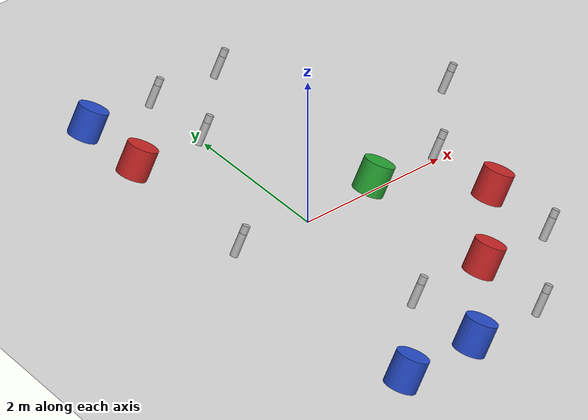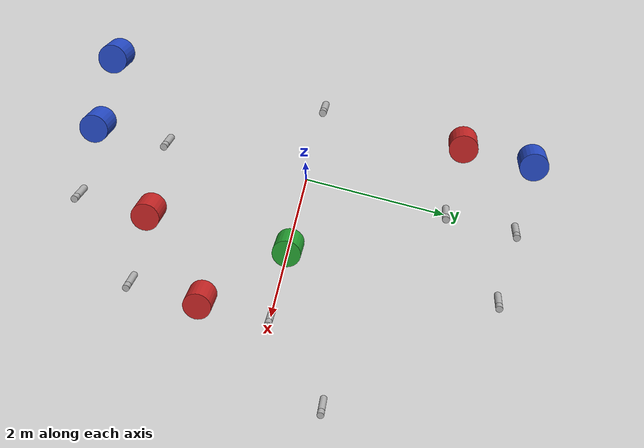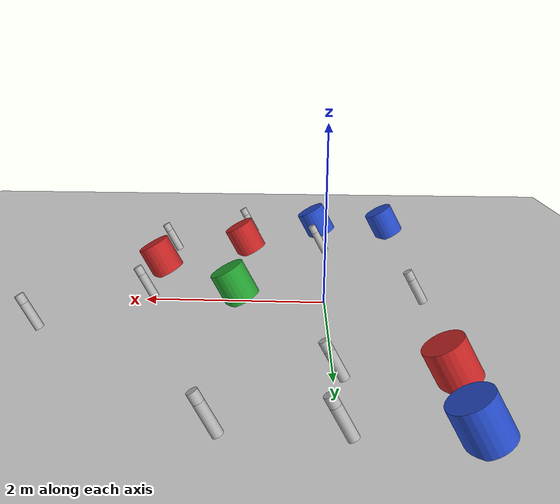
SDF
<sdf version='1.6'>
  <world name='default'>
    <plugin name="BetterReset" filename="libBetterReset.so"></plugin>

    <light name='sun' type='directional'>
      <cast_shadows>1</cast_shadows>
      <pose frame=''>0 0 10 0 -0 0</pose>
      <diffuse>0.8 0.8 0.8 1</diffuse>
      <specular>0.1 0.1 0.1 1</specular>
      <attenuation>
        <range>1000</range>
        <constant>0.9</constant>
        <linear>0.01</linear>
        <quadratic>0.001</quadratic>
      </attenuation>
      <direction>-0.5 0.5 -1</direction>
    </light>
    <gravity>0 0 -9.8</gravity>
    <magnetic_field>6e-06 2.3e-05 -4.2e-05</magnetic_field>
    <atmosphere type='adiabatic'/>
    <physics name='default_physics' default='0' type='ode'>
      <max_step_size>0.001</max_step_size>
      <real_time_factor>1</real_time_factor>
      <real_time_update_rate>1000</real_time_update_rate>
    </physics>
    <scene>
      <ambient>0.4 0.4 0.4 1</ambient>
      <background>0.7 0.7 0.7 1</background>
      <shadows>1</shadows>
    </scene>
    <spherical_coordinates>
      <surface_model>EARTH_WGS84</surface_model>
      <latitude_deg>0</latitude_deg>
      <longitude_deg>0</longitude_deg>
      <elevation>0</elevation>
      <heading_deg>0</heading_deg>
    </spherical_coordinates>

    <include>
      <uri>model://mars_plane</uri>
    </include>

    <model name='battery_0'>

      <plugin name='battery_0' filename='libBatteryPlugin.so'>
      </plugin>

      <pose frame=''>-1 0 0.21 0 0.5 0</pose>
      <link name='battery'>
        <gravity>0</gravity>
        <pose frame=''>0 0 0 0 0 0</pose>

        <visual name='body'>
          <pose frame=''>0 0 -0.05 0 -0 0</pose>
          <geometry>
            <cylinder>
                <radius>0.05</radius>
                <length>0.3</length>
            </cylinder>
          </geometry>
          <material>
            <script>
              <uri>model://battery/materials/scripts/</uri>
              <name>Battery/Body</name>
            </script>
          </material>
        </visual>

        <visual name='head'>
          <pose frame=''>0 0 0.15 0 -0 0</pose>
          <geometry>
            <cylinder>
                <radius>0.05</radius>
                <length>0.1</length>
            </cylinder>
          </geometry>
          <material>
            <script>
              <uri>model://battery/materials/scripts/</uri>
              <name>Battery/Head</name>
            </script>
          </material>
        </visual>
      </link>
    </model>

    <model name='battery_1'>

      <plugin name='battery_1' filename='libBatteryPlugin.so'>
      </plugin>

      <pose frame=''>0 2 0.21 0 0.5 0</pose>
      <link name='battery'>
        <gravity>0</gravity>
        <pose frame=''>0 0 0 0 0 0</pose>

        <visual name='body'>
          <pose frame=''>0 0 -0.05 0 -0 0</pose>
          <geometry>
            <cylinder>
                <radius>0.05</radius>
                <length>0.3</length>
            </cylinder>
          </geometry>
          <material>
            <script>
              <uri>model://battery/materials/scripts/</uri>
              <name>Battery/Body</name>
            </script>
          </material>
        </visual>

        <visual name='head'>
          <pose frame=''>0 0 0.15 0 -0 0</pose>
          <geometry>
            <cylinder>
                <radius>0.05</radius>
                <length>0.1</length>
            </cylinder>
          </geometry>
          <material>
            <script>
              <uri>model://battery/materials/scripts/</uri>
              <name>Battery/Head</name>
            </script>
          </material>
        </visual>
      </link>
    </model>

    <model name='battery_2'>

      <plugin name='battery_2' filename='libBatteryPlugin.so'>
      </plugin>

      <pose frame=''>0 3 0.21 0 0.5 0</pose>
      <link name='battery'>
        <gravity>0</gravity>
        <pose frame=''>0 0 0 0 0 0</pose>

        <visual name='body'>
          <pose frame=''>0 0 -0.05 0 -0 0</pose>
          <geometry>
            <cylinder>
                <radius>0.05</radius>
                <length>0.3</length>
            </cylinder>
          </geometry>
          <material>
            <script>
              <uri>model://battery/materials/scripts/</uri>
              <name>Battery/Body</name>
            </script>
          </material>
        </visual>

        <visual name='head'>
          <pose frame=''>0 0 0.15 0 -0 0</pose>
          <geometry>
            <cylinder>
                <radius>0.05</radius>
                <length>0.1</length>
            </cylinder>
          </geometry>
          <material>
            <script>
              <uri>model://battery/materials/scripts/</uri>
              <name>Battery/Head</name>
            </script>
          </material>
        </visual>
      </link>
    </model>

    <model name='battery_3'>

      <plugin name='battery_3' filename='libBatteryPlugin.so'>
      </plugin>

      <pose frame=''>1 3 0.21 0 0.5 0</pose>
      <link name='battery'>
        <gravity>0</gravity>
        <pose frame=''>0 0 0 0 0 0</pose>

        <visual name='body'>
          <pose frame=''>0 0 -0.05 0 -0 0</pose>
          <geometry>
            <cylinder>
                <radius>0.05</radius>
                <length>0.3</length>
            </cylinder>
          </geometry>
          <material>
            <script>
              <uri>model://battery/materials/scripts/</uri>
              <name>Battery/Body</name>
            </script>
          </material>
        </visual>

        <visual name='head'>
          <pose frame=''>0 0 0.15 0 -0 0</pose>
          <geometry>
            <cylinder>
                <radius>0.05</radius>
                <length>0.1</length>
            </cylinder>
          </geometry>
          <material>
            <script>
              <uri>model://battery/materials/scripts/</uri>
              <name>Battery/Head</name>
            </script>
          </material>
        </visual>
      </link>
    </model>

    <model name='battery_4'>

      <plugin name='battery_4' filename='libBatteryPlugin.so'>
      </plugin>

      <pose frame=''>0 -2 0.21 0 0.5 0</pose>
      <link name='battery'>
        <gravity>0</gravity>
        <pose frame=''>0 0 0 0 0 0</pose>

        <visual name='body'>
          <pose frame=''>0 0 -0.05 0 -0 0</pose>
          <geometry>
            <cylinder>
                <radius>0.05</radius>
                <length>0.3</length>
            </cylinder>
          </geometry>
          <material>
            <script>
              <uri>model://battery/materials/scripts/</uri>
              <name>Battery/Body</name>
            </script>
          </material>
        </visual>

        <visual name='head'>
          <pose frame=''>0 0 0.15 0 -0 0</pose>
          <geometry>
            <cylinder>
                <radius>0.05</radius>
                <length>0.1</length>
            </cylinder>
          </geometry>
          <material>
            <script>
              <uri>model://battery/materials/scripts/</uri>
              <name>Battery/Head</name>
            </script>
          </material>
        </visual>
      </link>
    </model>

    <model name='battery_5'>

      <plugin name='battery_5' filename='libBatteryPlugin.so'>
      </plugin>

      <pose frame=''>1 -3 0.21 0 0.5 0</pose>
      <link name='battery'>
        <gravity>0</gravity>
        <pose frame=''>0 0 0 0 0 0</pose>

        <visual name='body'>
          <pose frame=''>0 0 -0.05 0 -0 0</pose>
          <geometry>
            <cylinder>
                <radius>0.05</radius>
                <length>0.3</length>
            </cylinder>
          </geometry>
          <material>
            <script>
              <uri>model://battery/materials/scripts/</uri>
              <name>Battery/Body</name>
            </script>
          </material>
        </visual>

        <visual name='head'>
          <pose frame=''>0 0 0.15 0 -0 0</pose>
          <geometry>
            <cylinder>
                <radius>0.05</radius>
                <length>0.1</length>
            </cylinder>
          </geometry>
          <material>
            <script>
              <uri>model://battery/materials/scripts/</uri>
              <name>Battery/Head</name>
            </script>
          </material>
        </visual>
      </link>
    </model>

    <model name='battery_6'>

      <plugin name='battery_6' filename='libBatteryPlugin.so'>
      </plugin>

      <pose frame=''>2 -2 0.21 0 0.5 0</pose>
      <link name='battery'>
        <gravity>0</gravity>
        <pose frame=''>0 0 0 0 0 0</pose>

        <visual name='body'>
          <pose frame=''>0 0 -0.05 0 -0 0</pose>
          <geometry>
            <cylinder>
                <radius>0.05</radius>
                <length>0.3</length>
            </cylinder>
          </geometry>
          <material>
            <script>
              <uri>model://battery/materials/scripts/</uri>
              <name>Battery/Body</name>
            </script>
          </material>
        </visual>

        <visual name='head'>
          <pose frame=''>0 0 0.15 0 -0 0</pose>
          <geometry>
            <cylinder>
                <radius>0.05</radius>
                <length>0.1</length>
            </cylinder>
          </geometry>
          <material>
            <script>
              <uri>model://battery/materials/scripts/</uri>
              <name>Battery/Head</name>
            </script>
          </material>
        </visual>
      </link>
    </model>

    <model name='battery_7'>

      <plugin name='battery_7' filename='libBatteryPlugin.so'>
      </plugin>

      <pose frame=''>2 0 0.21 0 0.5 0</pose>
      <link name='battery'>
        <gravity>0</gravity>
        <pose frame=''>0 0 0 0 0 0</pose>

        <visual name='body'>
          <pose frame=''>0 0 -0.05 0 -0 0</pose>
          <geometry>
            <cylinder>
                <radius>0.05</radius>
                <length>0.3</length>
            </cylinder>
          </geometry>
          <material>
            <script>
              <uri>model://battery/materials/scripts/</uri>
              <name>Battery/Body</name>
            </script>
          </material>
        </visual>

        <visual name='head'>
          <pose frame=''>0 0 0.15 0 -0 0</pose>
          <geometry>
            <cylinder>
                <radius>0.05</radius>
                <length>0.1</length>
            </cylinder>
          </geometry>
          <material>
            <script>
              <uri>model://battery/materials/scripts/</uri>
              <name>Battery/Head</name>
            </script>
          </material>
        </visual>
      </link>
    </model>

    <model name='battery_8'>

      <plugin name='battery_8' filename='libBatteryPlugin.so'>
      </plugin>

      <pose frame=''>3 1 0.21 0 0.5 0</pose>
      <link name='battery'>
        <gravity>0</gravity>
        <pose frame=''>0 0 0 0 0 0</pose>

        <visual name='body'>
          <pose frame=''>0 0 -0.05 0 -0 0</pose>
          <geometry>
            <cylinder>
                <radius>0.05</radius>
                <length>0.3</length>
            </cylinder>
          </geometry>
          <material>
            <script>
              <uri>model://battery/materials/scripts/</uri>
              <name>Battery/Body</name>
            </script>
          </material>
        </visual>

        <visual name='head'>
          <pose frame=''>0 0 0.15 0 -0 0</pose>
          <geometry>
            <cylinder>
                <radius>0.05</radius>
                <length>0.1</length>
            </cylinder>
          </geometry>
          <material>
            <script>
              <uri>model://battery/materials/scripts/</uri>
              <name>Battery/Head</name>
            </script>
          </material>
        </visual>
      </link>
    </model>

    <model name='blue_equipment_0'>

      <plugin name='equipment_0' filename='libBatteryPlugin.so'>
      </plugin>

      <pose frame=''>-1 3 0.21 0 0.5 0</pose>
      <link name='battery'>
        <gravity>0</gravity>
        <pose frame=''>0 0 0 0 0 0</pose>

        <visual name='body'>
          <pose frame=''>0 0 0 0 -0 0</pose>
          <geometry>
            <cylinder>
              <radius>0.2</radius>
              <length>0.4</length>
            </cylinder>
          </geometry>
          <material>
            <script>
              <uri>model://equipment/materials/scripts/</uri>
              <name>Equipment/Blue</name>
            </script>
          </material>
        </visual>

      </link>
    </model>

    <model name='red_equipment_0'>

      <plugin name='equipment_1' filename='libBatteryPlugin.so'>
      </plugin>

      <pose frame=''>-1 2 0.21 0 0.5 0</pose>
      <link name='battery'>
        <gravity>0</gravity>
        <pose frame=''>0 0 0 0 0 0</pose>

        <visual name='body'>
          <pose frame=''>0 0 0 0 -0 0</pose>
          <geometry>
            <cylinder>
              <radius>0.2</radius>
              <length>0.4</length>
            </cylinder>
          </geometry>
          <material>
            <script>
              <uri>model://equipment/materials/scripts/</uri>
              <name>Equipment/Red</name>
            </script>
          </material>
        </visual>
      </link>
    </model>

    <model name='green_equipment_0'>

      <plugin name='equipment_2' filename='libBatteryPlugin.so'>
      </plugin>

      <pose frame=''>1 0 0.21 0 0.5 0</pose>
      <link name='battery'>
        <gravity>0</gravity>
        <pose frame=''>0 0 0 0 0 0</pose>

        <visual name='body'>
          <pose frame=''>0 0 0 0 -0 0</pose>
          <geometry>
            <cylinder>
              <radius>0.2</radius>
              <length>0.4</length>
            </cylinder>
          </geometry>
          <material>
            <script>
              <uri>model://equipment/materials/scripts/</uri>
              <name>Equipment/Green</name>
            </script>
          </material>
        </visual>
      </link>
    </model>

    <model name='red_equipment_1'>

      <plugin name='equipment_3' filename='libBatteryPlugin.so'>
      </plugin>

      <pose frame=''>2 -1 0.21 0 0.5 0</pose>
      <link name='battery'>
        <gravity>0</gravity>
        <pose frame=''>0 0 0 0 0 0</pose>

        <visual name='body'>
          <pose frame=''>0 0 0 0 -0 0</pose>
          <geometry>
            <cylinder>
              <radius>0.2</radius>
              <length>0.4</length>
            </cylinder>
          </geometry>
          <material>
            <script>
              <uri>model://equipment/materials/scripts/</uri>
              <name>Equipment/Red</name>
            </script>
          </material>
        </visual>
      </link>
    </model>

    <model name='red_equipment_2'>

      <plugin name='equipment_4' filename='libBatteryPlugin.so'>
      </plugin>

      <pose frame=''>1 -2 0.21 0 0.5 0</pose>
      <link name='battery'>
        <gravity>0</gravity>
        <pose frame=''>0 0 0 0 0 0</pose>

        <visual name='body'>
          <pose frame=''>0 0 0 0 -0 0</pose>
          <geometry>
            <cylinder>
              <radius>0.2</radius>
              <length>0.4</length>
            </cylinder>
          </geometry>
          <material>
            <script>
              <uri>model://equipment/materials/scripts/</uri>
              <name>Equipment/Red</name>
            </script>
          </material>
        </visual>
      </link>
    </model>

    <model name='blue_equipment_1'>

      <plugin name='equipment_5' filename='libBatteryPlugin.so'>
      </plugin>

      <pose frame=''>0 -3 0.21 0 0.5 0</pose>
      <link name='battery'>
        <gravity>0</gravity>
        <pose frame=''>0 0 0 0 0 0</pose>

        <visual name='body'>
          <pose frame=''>0 0 0 0 -0 0</pose>
          <geometry>
            <cylinder>
              <radius>0.2</radius>
              <length>0.4</length>
            </cylinder>
          </geometry>
          <material>
            <script>
              <uri>model://equipment/materials/scripts/</uri>
              <name>Equipment/Blue</name>
            </script>
          </material>
        </visual>
      </link>
    </model>

    <model name='blue_equipment_2'>

      <plugin name='equipment_6' filename='libBatteryPlugin.so'>
      </plugin>

      <pose frame=''>-1 -3 0.21 0 0.5 0</pose>
      <link name='battery'>
        <gravity>0</gravity>
        <pose frame=''>0 0 0 0 0 0</pose>

        <visual name='body'>
          <pose frame=''>0 0 0 0 -0 0</pose>
          <geometry>
            <cylinder>
              <radius>0.2</radius>
              <length>0.4</length>
            </cylinder>
          </geometry>
          <material>
            <script>
              <uri>model://equipment/materials/scripts/</uri>
              <name>Equipment/Blue</name>
            </script>
          </material>
        </visual>
      </link>
    </model>

    <gui fullscreen='0'>
      <camera name='user_camera'>
        <pose frame=''>-1.26511 -1.08652 18.565 0 1.5218 -0.122452</pose>
        <view_controller>orbit</view_controller>
        <projection_type>perspective</projection_type>
      </camera>
    </gui>
    <audio>
      <device>default</device>
    </audio>
    <wind/>
  </world>

</sdf>

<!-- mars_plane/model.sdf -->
<sdf version="1.5">
  <model name="mars_plane">
    <static>true</static>
    <link name="link">
      <collision name="collision">
        <geometry>
          <plane>
            <normal>0 0 1</normal>
            <size>100 100</size>
          </plane>
        </geometry>
        <surface>
          <contact>
             <collide_bitmask>0xffff</collide_bitmask>
          </contact>
          <friction>
            <ode>
              <mu>100</mu>
              <mu2>50</mu2>
            </ode>
          </friction>
        </surface>
      </collision>
      <visual name="visual">
        <cast_shadows>false</cast_shadows>
        <geometry>
          <plane>
            <normal>0 0 1</normal>
            <size>20 20</size>
          </plane>
        </geometry>
        <material>
          <script>
            <uri>model://mars_plane/materials/scripts/</uri>
            <uri>model://mars_plane/materials/textures/</uri>
            <name>Mars/Surface</name>
          </script>
        </material>
      </visual>
    </link>
  </model>
</sdf>
